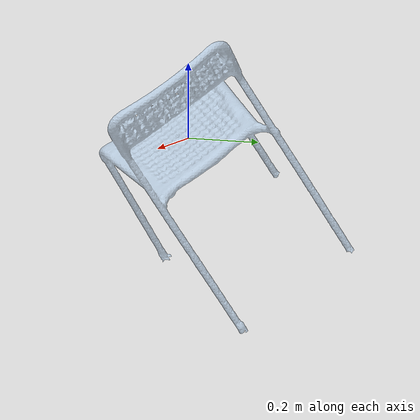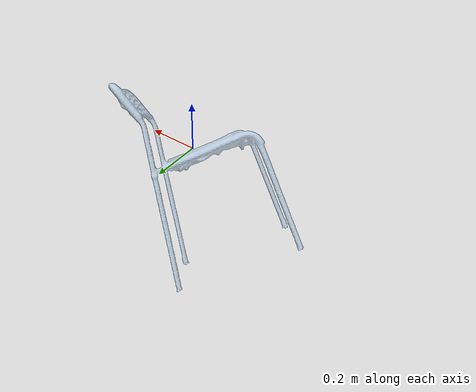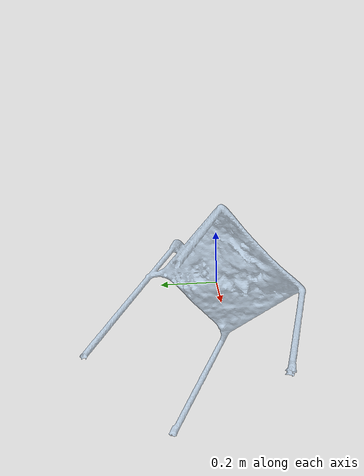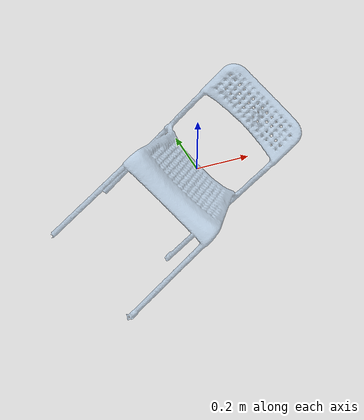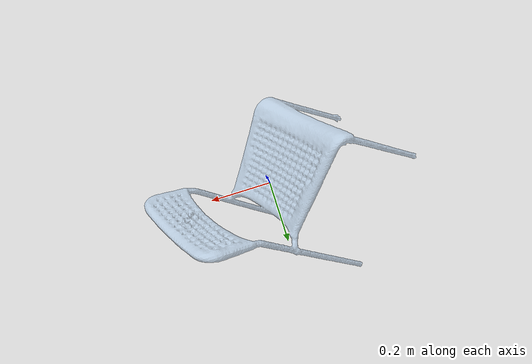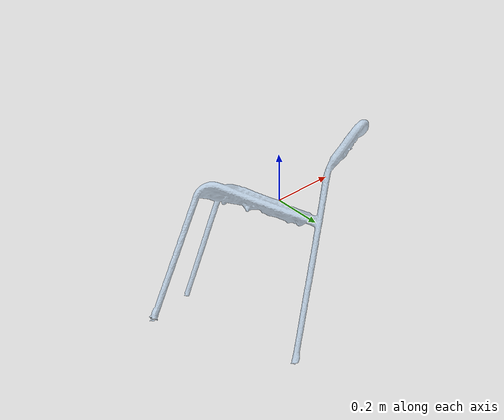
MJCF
<mujoco model="whitechair">
    <compiler meshdir="./"/>

    <default>
        <geom friction="0.9 0.5 0.5" rgba="0.7 0.8 0.9 0.7"/>
        <joint damping="0.5"/>
    </default>

    <asset>
        <mesh name="whitechair_mesh" file="whitechair.obj" scale="1 1 1"/>
    </asset>

    <worldbody>
        <body name="whitechair_link">
            <inertial pos="0 0 0" mass="0.1" diaginertia="0.002 0.002 0.002"/>
            <geom name="whitechair" type="mesh" mesh="whitechair_mesh"
                  pos="0 0 0" quat="1 0 0 0"
                  rgba="0.7 0.8 0.9 0.7"
                  friction="0.9 0.5 0.5"
                  solref="0.02 1"
                  solimp="0.9 0.95 0.001"/>
        </body>
    </worldbody>
</mujoco>
